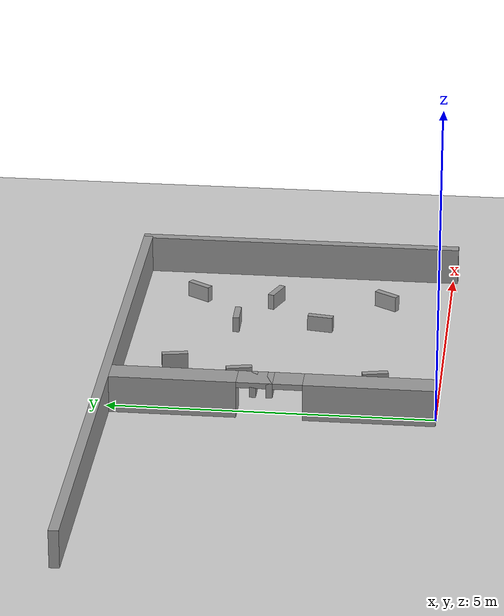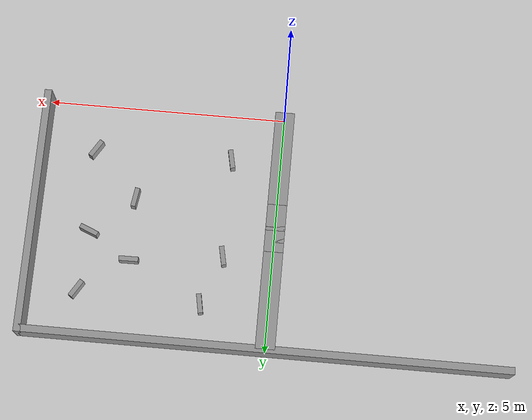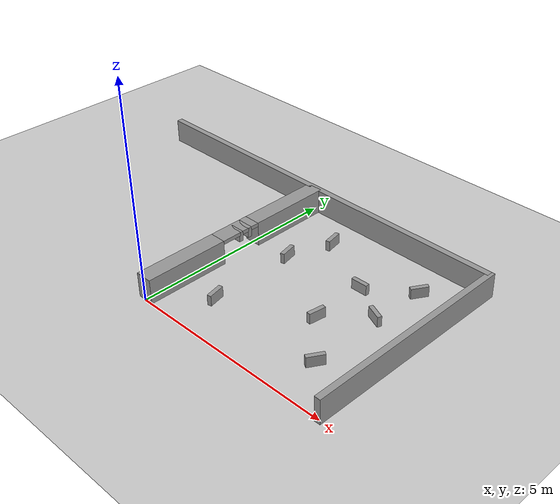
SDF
<sdf version="1.6">
 <world name="default">
  <model name="ground_plane">
   <static>1</static>
   <link name="link">
    <collision name="collision">
     <geometry><plane><normal>0 0 1</normal><size>100 100</size></plane></geometry>
     <surface><friction><ode><mu>100</mu><mu2>50</mu2></ode></friction></surface>
    </collision>
    <visual name="visual">
     <cast_shadows>0</cast_shadows>
     <geometry><plane><normal>0 0 1</normal><size>100 100</size></plane></geometry>
     <material>
      <script><uri>file://media/materials/scripts/gazebo.material</uri><name>Gazebo/Grey</name></script>
     </material>
    </visual>
   </link>
  </model>
  <model name="unit_box">
   <link name="link_0_clone">
    <inertial>
     <mass>1</mass>
     <inertia>
      <ixx>0.166667</ixx>
      <ixy>0</ixy>
      <ixz>0</ixz>
      <iyy>0.166667</iyy>
      <iyz>0</iyz>
      <izz>0.166667</izz>
     </inertia>
    </inertial>
    <pose>5 2.5 0.3 0 -0 0</pose>
    <visual name="visual">
     <geometry><box><size>0.15 5.15 0.59</size></box></geometry>
     <material>
      <lighting>1</lighting>
      <script><uri>file://media/materials/scripts/gazebo.material</uri><name>Gazebo/Grey</name></script>
      <shader type="pixel"><normal_map>__default__</normal_map></shader>
      <ambient>0.3 0.3 0.3 1</ambient>
      <diffuse>0.7 0.7 0.7 1</diffuse>
      <specular>0.01 0.01 0.01 1</specular>
      <emissive>0 0 0 1</emissive>
     </material>
    </visual>
    <collision name="collision">
     <geometry><box><size>0.15 5.15 0.59</size></box></geometry>
     <surface>
      <friction>
       <ode><mu>1</mu><mu2>1</mu2><fdir1>0 0 0</fdir1><slip1>0</slip1><slip2>0</slip2></ode>
       <torsional>
        <coefficient>1</coefficient>
        <patch_radius>0</patch_radius>
        <surface_radius>0</surface_radius>
        <use_patch_radius>1</use_patch_radius>
        <ode><slip>0</slip></ode>
       </torsional>
      </friction>
      <bounce><restitution_coefficient>0</restitution_coefficient><threshold>1e+06</threshold></bounce>
      <contact>
       <collide_without_contact>0</collide_without_contact>
       <collide_without_contact_bitmask>1</collide_without_contact_bitmask>
       <collide_bitmask>1</collide_bitmask>
       <ode>
        <soft_cfm>0</soft_cfm>
        <soft_erp>0.2</soft_erp>
        <kp>1e+13</kp>
        <kd>1</kd>
        <max_vel>0.01</max_vel>
        <min_depth>0</min_depth>
       </ode>
       <bullet>
        <split_impulse>1</split_impulse>
        <split_impulse_penetration_threshold>-0.01</split_impulse_penetration_threshold>
        <soft_cfm>0</soft_cfm>
        <soft_erp>0.2</soft_erp>
        <kp>1e+13</kp>
        <kd>1</kd>
       </bullet>
      </contact>
     </surface>
    </collision>
   </link>
   <link name="link_1_clone_0_clone">
    <inertial>
     <mass>1</mass>
     <inertia>
      <ixx>0.166667</ixx>
      <ixy>0</ixy>
      <ixz>0</ixz>
      <iyy>0.166667</iyy>
      <iyz>0</iyz>
      <izz>0.166667</izz>
     </inertia>
    </inertial>
    <pose>0 2.5 0.475 0 -0 0</pose>
    <visual name="visual">
     <geometry><box><size>0.4 0.1 0.24</size></box></geometry>
     <material>
      <lighting>1</lighting>
      <script><uri>file://media/materials/scripts/gazebo.material</uri><name>Gazebo/Grey</name></script>
      <shader type="pixel"><normal_map>__default__</normal_map></shader>
      <ambient>0.3 0.3 0.3 1</ambient>
      <diffuse>0.7 0.7 0.7 1</diffuse>
      <specular>0.01 0.01 0.01 1</specular>
      <emissive>0 0 0 1</emissive>
     </material>
    </visual>
    <collision name="collision">
     <geometry><box><size>0.4 0.1 0.24</size></box></geometry>
     <surface>
      <friction>
       <ode><mu>1</mu><mu2>1</mu2><fdir1>0 0 0</fdir1><slip1>0</slip1><slip2>0</slip2></ode>
       <torsional>
        <coefficient>1</coefficient>
        <patch_radius>0</patch_radius>
        <surface_radius>0</surface_radius>
        <use_patch_radius>1</use_patch_radius>
        <ode><slip>0</slip></ode>
       </torsional>
      </friction>
      <bounce><restitution_coefficient>0</restitution_coefficient><threshold>1e+06</threshold></bounce>
      <contact>
       <collide_without_contact>0</collide_without_contact>
       <collide_without_contact_bitmask>1</collide_without_contact_bitmask>
       <collide_bitmask>1</collide_bitmask>
       <ode>
        <soft_cfm>0</soft_cfm>
        <soft_erp>0.2</soft_erp>
        <kp>1e+13</kp>
        <kd>1</kd>
        <max_vel>0.01</max_vel>
        <min_depth>0</min_depth>
       </ode>
       <bullet>
        <split_impulse>1</split_impulse>
        <split_impulse_penetration_threshold>-0.01</split_impulse_penetration_threshold>
        <soft_cfm>0</soft_cfm>
        <soft_erp>0.2</soft_erp>
        <kp>1e+13</kp>
        <kd>1</kd>
       </bullet>
      </contact>
     </surface>
    </collision>
   </link>
   <link name="link_1_clone_0_clone_clone_0">
    <inertial>
     <mass>1</mass>
     <inertia>
      <ixx>0.166667</ixx>
      <ixy>0</ixy>
      <ixz>0</ixz>
      <iyy>0.166667</iyy>
      <iyz>0</iyz>
      <izz>0.166667</izz>
     </inertia>
    </inertial>
    <pose>0 2.75 0.475 0 -0 0</pose>
    <visual name="visual">
     <geometry><box><size>0.4 0.1 0.24</size></box></geometry>
     <material>
      <lighting>1</lighting>
      <script><uri>file://media/materials/scripts/gazebo.material</uri><name>Gazebo/Grey</name></script>
      <shader type="pixel"><normal_map>__default__</normal_map></shader>
      <ambient>0.3 0.3 0.3 1</ambient>
      <diffuse>0.7 0.7 0.7 1</diffuse>
      <specular>0.01 0.01 0.01 1</specular>
      <emissive>0 0 0 1</emissive>
     </material>
    </visual>
    <collision name="collision">
     <geometry><box><size>0.4 0.1 0.24</size></box></geometry>
     <surface>
      <friction>
       <ode><mu>1</mu><mu2>1</mu2><fdir1>0 0 0</fdir1><slip1>0</slip1><slip2>0</slip2></ode>
       <torsional>
        <coefficient>1</coefficient>
        <patch_radius>0</patch_radius>
        <surface_radius>0</surface_radius>
        <use_patch_radius>1</use_patch_radius>
        <ode><slip>0</slip></ode>
       </torsional>
      </friction>
      <bounce><restitution_coefficient>0</restitution_coefficient><threshold>1e+06</threshold></bounce>
      <contact>
       <collide_without_contact>0</collide_without_contact>
       <collide_without_contact_bitmask>1</collide_without_contact_bitmask>
       <collide_bitmask>1</collide_bitmask>
       <ode>
        <soft_cfm>0</soft_cfm>
        <soft_erp>0.2</soft_erp>
        <kp>1e+13</kp>
        <kd>1</kd>
        <max_vel>0.01</max_vel>
        <min_depth>0</min_depth>
       </ode>
       <bullet>
        <split_impulse>1</split_impulse>
        <split_impulse_penetration_threshold>-0.01</split_impulse_penetration_threshold>
        <soft_cfm>0</soft_cfm>
        <soft_erp>0.2</soft_erp>
        <kp>1e+13</kp>
        <kd>1</kd>
       </bullet>
      </contact>
     </surface>
    </collision>
   </link>
   <link name="link_1_clone_0_clone_clone_1_clone_0_clone">
    <inertial>
     <mass>1</mass>
     <inertia>
      <ixx>0.166667</ixx>
      <ixy>0</ixy>
      <ixz>0</ixz>
      <iyy>0.166667</iyy>
      <iyz>0</iyz>
      <izz>0.166667</izz>
     </inertia>
    </inertial>
    <pose>2.96697 1.99891 0.125 0 -0 1.42</pose>
    <visual name="visual">
     <geometry><box><size>0.4 0.1 0.25</size></box></geometry>
     <material>
      <lighting>1</lighting>
      <script><uri>file://media/materials/scripts/gazebo.material</uri><name>Gazebo/Grey</name></script>
      <shader type="pixel"><normal_map>__default__</normal_map></shader>
      <ambient>0.3 0.3 0.3 1</ambient>
      <diffuse>0.7 0.7 0.7 1</diffuse>
      <specular>0.01 0.01 0.01 1</specular>
      <emissive>0 0 0 1</emissive>
     </material>
    </visual>
    <collision name="collision">
     <geometry><box><size>0.4 0.1 0.25</size></box></geometry>
     <surface>
      <friction>
       <ode><mu>1</mu><mu2>1</mu2><fdir1>0 0 0</fdir1><slip1>0</slip1><slip2>0</slip2></ode>
       <torsional>
        <coefficient>1</coefficient>
        <patch_radius>0</patch_radius>
        <surface_radius>0</surface_radius>
        <use_patch_radius>1</use_patch_radius>
        <ode><slip>0</slip></ode>
       </torsional>
      </friction>
      <bounce><restitution_coefficient>0</restitution_coefficient><threshold>1e+06</threshold></bounce>
      <contact>
       <collide_without_contact>0</collide_without_contact>
       <collide_without_contact_bitmask>1</collide_without_contact_bitmask>
       <collide_bitmask>1</collide_bitmask>
       <ode>
        <soft_cfm>0</soft_cfm>
        <soft_erp>0.2</soft_erp>
        <kp>1e+13</kp>
        <kd>1</kd>
        <max_vel>0.01</max_vel>
        <min_depth>0</min_depth>
       </ode>
       <bullet>
        <split_impulse>1</split_impulse>
        <split_impulse_penetration_threshold>-0.01</split_impulse_penetration_threshold>
        <soft_cfm>0</soft_cfm>
        <soft_erp>0.2</soft_erp>
        <kp>1e+13</kp>
        <kd>1</kd>
       </bullet>
      </contact>
     </surface>
    </collision>
   </link>
   <link name="link_1_clone_0_clone_clone_1_clone_1_clone">
    <inertial>
     <mass>1</mass>
     <inertia>
      <ixx>0.166667</ixx>
      <ixy>0</ixy>
      <ixz>0</ixz>
      <iyy>0.166667</iyy>
      <iyz>0</iyz>
      <izz>0.166667</izz>
     </inertia>
    </inertial>
    <pose>3.84818 2.77976 0.125 0 0 -0.389342</pose>
    <visual name="visual">
     <geometry><box><size>0.4 0.1 0.25</size></box></geometry>
     <material>
      <lighting>1</lighting>
      <script><uri>file://media/materials/scripts/gazebo.material</uri><name>Gazebo/Grey</name></script>
      <shader type="pixel"><normal_map>__default__</normal_map></shader>
      <ambient>0.3 0.3 0.3 1</ambient>
      <diffuse>0.7 0.7 0.7 1</diffuse>
      <specular>0.01 0.01 0.01 1</specular>
      <emissive>0 0 0 1</emissive>
     </material>
    </visual>
    <collision name="collision">
     <geometry><box><size>0.4 0.1 0.25</size></box></geometry>
     <surface>
      <friction>
       <ode><mu>1</mu><mu2>1</mu2><fdir1>0 0 0</fdir1><slip1>0</slip1><slip2>0</slip2></ode>
       <torsional>
        <coefficient>1</coefficient>
        <patch_radius>0</patch_radius>
        <surface_radius>0</surface_radius>
        <use_patch_radius>1</use_patch_radius>
        <ode><slip>0</slip></ode>
       </torsional>
      </friction>
      <bounce><restitution_coefficient>0</restitution_coefficient><threshold>1e+06</threshold></bounce>
      <contact>
       <collide_without_contact>0</collide_without_contact>
       <collide_without_contact_bitmask>1</collide_without_contact_bitmask>
       <collide_bitmask>1</collide_bitmask>
       <ode>
        <soft_cfm>0</soft_cfm>
        <soft_erp>0.2</soft_erp>
        <kp>1e+13</kp>
        <kd>1</kd>
        <max_vel>0.01</max_vel>
        <min_depth>0</min_depth>
       </ode>
       <bullet>
        <split_impulse>1</split_impulse>
        <split_impulse_penetration_threshold>-0.01</split_impulse_penetration_threshold>
        <soft_cfm>0</soft_cfm>
        <soft_erp>0.2</soft_erp>
        <kp>1e+13</kp>
        <kd>1</kd>
       </bullet>
      </contact>
     </surface>
    </collision>
   </link>
   <link name="link_1_clone_0_clone_clone_1_clone_4_clone">
    <inertial>
     <mass>1</mass>
     <inertia>
      <ixx>0.166667</ixx>
      <ixy>0</ixy>
      <ixz>0</ixz>
      <iyy>0.166667</iyy>
      <iyz>0</iyz>
      <izz>0.166667</izz>
     </inertia>
    </inertial>
    <pose>1.41276 4.12196 0.125 0 -0 1.75222</pose>
    <visual name="visual">
     <geometry><box><size>0.4 0.1 0.25</size></box></geometry>
     <material>
      <lighting>1</lighting>
      <script><uri>file://media/materials/scripts/gazebo.material</uri><name>Gazebo/Grey</name></script>
      <shader type="pixel"><normal_map>__default__</normal_map></shader>
      <ambient>0.3 0.3 0.3 1</ambient>
      <diffuse>0.7 0.7 0.7 1</diffuse>
      <specular>0.01 0.01 0.01 1</specular>
      <emissive>0 0 0 1</emissive>
     </material>
    </visual>
    <collision name="collision">
     <geometry><box><size>0.4 0.1 0.25</size></box></geometry>
     <surface>
      <friction>
       <ode><mu>1</mu><mu2>1</mu2><fdir1>0 0 0</fdir1><slip1>0</slip1><slip2>0</slip2></ode>
       <torsional>
        <coefficient>1</coefficient>
        <patch_radius>0</patch_radius>
        <surface_radius>0</surface_radius>
        <use_patch_radius>1</use_patch_radius>
        <ode><slip>0</slip></ode>
       </torsional>
      </friction>
      <bounce><restitution_coefficient>0</restitution_coefficient><threshold>1e+06</threshold></bounce>
      <contact>
       <collide_without_contact>0</collide_without_contact>
       <collide_without_contact_bitmask>1</collide_without_contact_bitmask>
       <collide_bitmask>1</collide_bitmask>
       <ode>
        <soft_cfm>0</soft_cfm>
        <soft_erp>0.2</soft_erp>
        <kp>1e+13</kp>
        <kd>1</kd>
        <max_vel>0.01</max_vel>
        <min_depth>0</min_depth>
       </ode>
       <bullet>
        <split_impulse>1</split_impulse>
        <split_impulse_penetration_threshold>-0.01</split_impulse_penetration_threshold>
        <soft_cfm>0</soft_cfm>
        <soft_erp>0.2</soft_erp>
        <kp>1e+13</kp>
        <kd>1</kd>
       </bullet>
      </contact>
     </surface>
    </collision>
   </link>
   <link name="link_1_clone_0_clone_clone_1_clone_5_clone_clone">
    <inertial>
     <mass>1</mass>
     <inertia>
      <ixx>0.166667</ixx>
      <ixy>0</ixy>
      <ixz>0</ixz>
      <iyy>0.166667</iyy>
      <iyz>0</iyz>
      <izz>0.166667</izz>
     </inertia>
    </inertial>
    <pose>3.90258 1.00954 0.125 0 -0 1.0177</pose>
    <visual name="visual">
     <geometry><box><size>0.4 0.1 0.25</size></box></geometry>
     <material>
      <lighting>1</lighting>
      <script><uri>file://media/materials/scripts/gazebo.material</uri><name>Gazebo/Grey</name></script>
      <shader type="pixel"><normal_map>__default__</normal_map></shader>
      <ambient>0.3 0.3 0.3 1</ambient>
      <diffuse>0.7 0.7 0.7 1</diffuse>
      <specular>0.01 0.01 0.01 1</specular>
      <emissive>0 0 0 1</emissive>
     </material>
    </visual>
    <collision name="collision">
     <geometry><box><size>0.4 0.1 0.25</size></box></geometry>
     <surface>
      <friction>
       <ode><mu>1</mu><mu2>1</mu2><fdir1>0 0 0</fdir1><slip1>0</slip1><slip2>0</slip2></ode>
       <torsional>
        <coefficient>1</coefficient>
        <patch_radius>0</patch_radius>
        <surface_radius>0</surface_radius>
        <use_patch_radius>1</use_patch_radius>
        <ode><slip>0</slip></ode>
       </torsional>
      </friction>
      <bounce><restitution_coefficient>0</restitution_coefficient><threshold>1e+06</threshold></bounce>
      <contact>
       <collide_without_contact>0</collide_without_contact>
       <collide_without_contact_bitmask>1</collide_without_contact_bitmask>
       <collide_bitmask>1</collide_bitmask>
       <ode>
        <soft_cfm>0</soft_cfm>
        <soft_erp>0.2</soft_erp>
        <kp>1e+13</kp>
        <kd>1</kd>
        <max_vel>0.01</max_vel>
        <min_depth>0</min_depth>
       </ode>
       <bullet>
        <split_impulse>1</split_impulse>
        <split_impulse_penetration_threshold>-0.01</split_impulse_penetration_threshold>
        <soft_cfm>0</soft_cfm>
        <soft_erp>0.2</soft_erp>
        <kp>1e+13</kp>
        <kd>1</kd>
       </bullet>
      </contact>
     </surface>
    </collision>
   </link>
   <link name="link_1_clone_0_clone_clone_1_clone_6_clone">
    <inertial>
     <mass>1</mass>
     <inertia>
      <ixx>0.166667</ixx>
      <ixy>0</ixy>
      <ixz>0</ixz>
      <iyy>0.166667</iyy>
      <iyz>0</iyz>
      <izz>0.166667</izz>
     </inertia>
    </inertial>
    <pose>2.96344 3.32146 0.125 0 -0 0.01</pose>
    <visual name="visual">
     <geometry><box><size>0.4 0.1 0.25</size></box></geometry>
     <material>
      <lighting>1</lighting>
      <script><uri>file://media/materials/scripts/gazebo.material</uri><name>Gazebo/Grey</name></script>
      <shader type="pixel"><normal_map>__default__</normal_map></shader>
      <ambient>0.3 0.3 0.3 1</ambient>
      <diffuse>0.7 0.7 0.7 1</diffuse>
      <specular>0.01 0.01 0.01 1</specular>
      <emissive>0 0 0 1</emissive>
     </material>
    </visual>
    <collision name="collision">
     <geometry><box><size>0.4 0.1 0.25</size></box></geometry>
     <surface>
      <friction>
       <ode><mu>1</mu><mu2>1</mu2><fdir1>0 0 0</fdir1><slip1>0</slip1><slip2>0</slip2></ode>
       <torsional>
        <coefficient>1</coefficient>
        <patch_radius>0</patch_radius>
        <surface_radius>0</surface_radius>
        <use_patch_radius>1</use_patch_radius>
        <ode><slip>0</slip></ode>
       </torsional>
      </friction>
      <bounce><restitution_coefficient>0</restitution_coefficient><threshold>1e+06</threshold></bounce>
      <contact>
       <collide_without_contact>0</collide_without_contact>
       <collide_without_contact_bitmask>1</collide_without_contact_bitmask>
       <collide_bitmask>1</collide_bitmask>
       <ode>
        <soft_cfm>0</soft_cfm>
        <soft_erp>0.2</soft_erp>
        <kp>1e+13</kp>
        <kd>1</kd>
        <max_vel>0.01</max_vel>
        <min_depth>0</min_depth>
       </ode>
       <bullet>
        <split_impulse>1</split_impulse>
        <split_impulse_penetration_threshold>-0.01</split_impulse_penetration_threshold>
        <soft_cfm>0</soft_cfm>
        <soft_erp>0.2</soft_erp>
        <kp>1e+13</kp>
        <kd>1</kd>
       </bullet>
      </contact>
     </surface>
    </collision>
   </link>
   <link name="link_1_clone_0_clone_clone_1_clone_7">
    <inertial>
     <mass>1</mass>
     <inertia>
      <ixx>0.166667</ixx>
      <ixy>0</ixy>
      <ixz>0</ixz>
      <iyy>0.166667</iyy>
      <iyz>0</iyz>
      <izz>0.166667</izz>
     </inertia>
    </inertial>
    <pose>1.03965 0.995472 0.125 0 0 -1.36276</pose>
    <visual name="visual">
     <geometry><box><size>0.4 0.1 0.25</size></box></geometry>
     <material>
      <lighting>1</lighting>
      <script><uri>file://media/materials/scripts/gazebo.material</uri><name>Gazebo/Grey</name></script>
      <shader type="pixel"><normal_map>__default__</normal_map></shader>
      <ambient>0.3 0.3 0.3 1</ambient>
      <diffuse>0.7 0.7 0.7 1</diffuse>
      <specular>0.01 0.01 0.01 1</specular>
      <emissive>0 0 0 1</emissive>
     </material>
    </visual>
    <collision name="collision">
     <geometry><box><size>0.4 0.1 0.25</size></box></geometry>
     <surface>
      <friction>
       <ode><mu>1</mu><mu2>1</mu2><fdir1>0 0 0</fdir1><slip1>0</slip1><slip2>0</slip2></ode>
       <torsional>
        <coefficient>1</coefficient>
        <patch_radius>0</patch_radius>
        <surface_radius>0</surface_radius>
        <use_patch_radius>1</use_patch_radius>
        <ode><slip>0</slip></ode>
       </torsional>
      </friction>
      <bounce><restitution_coefficient>0</restitution_coefficient><threshold>1e+06</threshold></bounce>
      <contact>
       <collide_without_contact>0</collide_without_contact>
       <collide_without_contact_bitmask>1</collide_without_contact_bitmask>
       <collide_bitmask>1</collide_bitmask>
       <ode>
        <soft_cfm>0</soft_cfm>
        <soft_erp>0.2</soft_erp>
        <kp>1e+13</kp>
        <kd>1</kd>
        <max_vel>0.01</max_vel>
        <min_depth>0</min_depth>
       </ode>
       <bullet>
        <split_impulse>1</split_impulse>
        <split_impulse_penetration_threshold>-0.01</split_impulse_penetration_threshold>
        <soft_cfm>0</soft_cfm>
        <soft_erp>0.2</soft_erp>
        <kp>1e+13</kp>
        <kd>1</kd>
       </bullet>
      </contact>
     </surface>
    </collision>
   </link>
   <link name="link_1_clone_0_clone_clone_1_clone_8">
    <inertial>
     <mass>1</mass>
     <inertia>
      <ixx>0.166667</ixx>
      <ixy>0</ixy>
      <ixz>0</ixz>
      <iyy>0.166667</iyy>
      <iyz>0</iyz>
      <izz>0.166667</izz>
     </inertia>
    </inertial>
    <pose>1.03485 3.08411 0.125 0 0 -1.36276</pose>
    <visual name="visual">
     <geometry><box><size>0.4 0.1 0.25</size></box></geometry>
     <material>
      <lighting>1</lighting>
      <script><uri>file://media/materials/scripts/gazebo.material</uri><name>Gazebo/Grey</name></script>
      <shader type="pixel"><normal_map>__default__</normal_map></shader>
      <ambient>0.3 0.3 0.3 1</ambient>
      <diffuse>0.7 0.7 0.7 1</diffuse>
      <specular>0.01 0.01 0.01 1</specular>
      <emissive>0 0 0 1</emissive>
     </material>
    </visual>
    <collision name="collision">
     <geometry><box><size>0.4 0.1 0.25</size></box></geometry>
     <surface>
      <friction>
       <ode><mu>1</mu><mu2>1</mu2><fdir1>0 0 0</fdir1><slip1>0</slip1><slip2>0</slip2></ode>
       <torsional>
        <coefficient>1</coefficient>
        <patch_radius>0</patch_radius>
        <surface_radius>0</surface_radius>
        <use_patch_radius>1</use_patch_radius>
        <ode><slip>0</slip></ode>
       </torsional>
      </friction>
      <bounce><restitution_coefficient>0</restitution_coefficient><threshold>1e+06</threshold></bounce>
      <contact>
       <collide_without_contact>0</collide_without_contact>
       <collide_without_contact_bitmask>1</collide_without_contact_bitmask>
       <collide_bitmask>1</collide_bitmask>
       <ode>
        <soft_cfm>0</soft_cfm>
        <soft_erp>0.2</soft_erp>
        <kp>1e+13</kp>
        <kd>1</kd>
        <max_vel>0.01</max_vel>
        <min_depth>0</min_depth>
       </ode>
       <bullet>
        <split_impulse>1</split_impulse>
        <split_impulse_penetration_threshold>-0.01</split_impulse_penetration_threshold>
        <soft_cfm>0</soft_cfm>
        <soft_erp>0.2</soft_erp>
        <kp>1e+13</kp>
        <kd>1</kd>
       </bullet>
      </contact>
     </surface>
    </collision>
   </link>
   <link name="link_1_clone_0_clone_clone_1_clone_clone">
    <inertial>
     <mass>1</mass>
     <inertia>
      <ixx>0.166667</ixx>
      <ixy>0</ixy>
      <ixz>0</ixz>
      <iyy>0.166667</iyy>
      <iyz>0</iyz>
      <izz>0.166667</izz>
     </inertia>
    </inertial>
    <pose>3.96677 4.02792 0.125 0 -0 1.0177</pose>
    <visual name="visual">
     <geometry><box><size>0.4 0.1 0.25</size></box></geometry>
     <material>
      <lighting>1</lighting>
      <script><uri>file://media/materials/scripts/gazebo.material</uri><name>Gazebo/Grey</name></script>
      <shader type="pixel"><normal_map>__default__</normal_map></shader>
      <ambient>0.3 0.3 0.3 1</ambient>
      <diffuse>0.7 0.7 0.7 1</diffuse>
      <specular>0.01 0.01 0.01 1</specular>
      <emissive>0 0 0 1</emissive>
     </material>
    </visual>
    <collision name="collision">
     <geometry><box><size>0.4 0.1 0.25</size></box></geometry>
     <surface>
      <friction>
       <ode><mu>1</mu><mu2>1</mu2><fdir1>0 0 0</fdir1><slip1>0</slip1><slip2>0</slip2></ode>
       <torsional>
        <coefficient>1</coefficient>
        <patch_radius>0</patch_radius>
        <surface_radius>0</surface_radius>
        <use_patch_radius>1</use_patch_radius>
        <ode><slip>0</slip></ode>
       </torsional>
      </friction>
      <bounce><restitution_coefficient>0</restitution_coefficient><threshold>1e+06</threshold></bounce>
      <contact>
       <collide_without_contact>0</collide_without_contact>
       <collide_without_contact_bitmask>1</collide_without_contact_bitmask>
       <collide_bitmask>1</collide_bitmask>
       <ode>
        <soft_cfm>0</soft_cfm>
        <soft_erp>0.2</soft_erp>
        <kp>1e+13</kp>
        <kd>1</kd>
        <max_vel>0.01</max_vel>
        <min_depth>0</min_depth>
       </ode>
       <bullet>
        <split_impulse>1</split_impulse>
        <split_impulse_penetration_threshold>-0.01</split_impulse_penetration_threshold>
        <soft_cfm>0</soft_cfm>
        <soft_erp>0.2</soft_erp>
        <kp>1e+13</kp>
        <kd>1</kd>
       </bullet>
      </contact>
     </surface>
    </collision>
   </link>
   <link name="link_3">
    <inertial>
     <mass>1</mass>
     <inertia>
      <ixx>0.166667</ixx>
      <ixy>0</ixy>
      <ixz>0</ixz>
      <iyy>0.166667</iyy>
      <iyz>0</iyz>
      <izz>0.166667</izz>
     </inertia>
    </inertial>
    <pose>0 1 0.3 0 -0 0</pose>
    <visual name="visual">
     <geometry><box><size>0.4 2 0.59</size></box></geometry>
     <material>
      <lighting>1</lighting>
      <script><uri>file://media/materials/scripts/gazebo.material</uri><name>Gazebo/Grey</name></script>
      <shader type="pixel"><normal_map>__default__</normal_map></shader>
      <ambient>0.3 0.3 0.3 1</ambient>
      <diffuse>0.7 0.7 0.7 1</diffuse>
      <specular>0.01 0.01 0.01 1</specular>
      <emissive>0 0 0 1</emissive>
     </material>
    </visual>
    <collision name="collision">
     <geometry><box><size>0.4 2 0.59</size></box></geometry>
     <surface>
      <friction>
       <ode><mu>1</mu><mu2>1</mu2><fdir1>0 0 0</fdir1><slip1>0</slip1><slip2>0</slip2></ode>
       <torsional>
        <coefficient>1</coefficient>
        <patch_radius>0</patch_radius>
        <surface_radius>0</surface_radius>
        <use_patch_radius>1</use_patch_radius>
        <ode><slip>0</slip></ode>
       </torsional>
      </friction>
      <bounce><restitution_coefficient>0</restitution_coefficient><threshold>1e+06</threshold></bounce>
      <contact>
       <collide_without_contact>0</collide_without_contact>
       <collide_without_contact_bitmask>1</collide_without_contact_bitmask>
       <collide_bitmask>1</collide_bitmask>
       <ode>
        <soft_cfm>0</soft_cfm>
        <soft_erp>0.2</soft_erp>
        <kp>1e+13</kp>
        <kd>1</kd>
        <max_vel>0.01</max_vel>
        <min_depth>0</min_depth>
       </ode>
       <bullet>
        <split_impulse>1</split_impulse>
        <split_impulse_penetration_threshold>-0.01</split_impulse_penetration_threshold>
        <soft_cfm>0</soft_cfm>
        <soft_erp>0.2</soft_erp>
        <kp>1e+13</kp>
        <kd>1</kd>
       </bullet>
      </contact>
     </surface>
    </collision>
   </link>
   <link name="link_3_clone">
    <inertial>
     <mass>1</mass>
     <inertia>
      <ixx>0.166667</ixx>
      <ixy>0</ixy>
      <ixz>0</ixz>
      <iyy>0.166667</iyy>
      <iyz>0</iyz>
      <izz>0.166667</izz>
     </inertia>
    </inertial>
    <pose>0 4 0.3 0 -0 0</pose>
    <visual name="visual">
     <geometry><box><size>0.4 2 0.59</size></box></geometry>
     <material>
      <lighting>1</lighting>
      <script><uri>file://media/materials/scripts/gazebo.material</uri><name>Gazebo/Grey</name></script>
      <shader type="pixel"><normal_map>__default__</normal_map></shader>
      <ambient>0.3 0.3 0.3 1</ambient>
      <diffuse>0.7 0.7 0.7 1</diffuse>
      <specular>0.01 0.01 0.01 1</specular>
      <emissive>0 0 0 1</emissive>
     </material>
    </visual>
    <collision name="collision">
     <geometry><box><size>0.4 2 0.59</size></box></geometry>
     <surface>
      <friction>
       <ode><mu>1</mu><mu2>1</mu2><fdir1>0 0 0</fdir1><slip1>0</slip1><slip2>0</slip2></ode>
       <torsional>
        <coefficient>1</coefficient>
        <patch_radius>0</patch_radius>
        <surface_radius>0</surface_radius>
        <use_patch_radius>1</use_patch_radius>
        <ode><slip>0</slip></ode>
       </torsional>
      </friction>
      <bounce><restitution_coefficient>0</restitution_coefficient><threshold>1e+06</threshold></bounce>
      <contact>
       <collide_without_contact>0</collide_without_contact>
       <collide_without_contact_bitmask>1</collide_without_contact_bitmask>
       <collide_bitmask>1</collide_bitmask>
       <ode>
        <soft_cfm>0</soft_cfm>
        <soft_erp>0.2</soft_erp>
        <kp>1e+13</kp>
        <kd>1</kd>
        <max_vel>0.01</max_vel>
        <min_depth>0</min_depth>
       </ode>
       <bullet>
        <split_impulse>1</split_impulse>
        <split_impulse_penetration_threshold>-0.01</split_impulse_penetration_threshold>
        <soft_cfm>0</soft_cfm>
        <soft_erp>0.2</soft_erp>
        <kp>1e+13</kp>
        <kd>1</kd>
       </bullet>
      </contact>
     </surface>
    </collision>
   </link>
   <link name="link_4">
    <inertial>
     <mass>1</mass>
     <inertia>
      <ixx>0.166667</ixx>
      <ixy>0</ixy>
      <ixz>0</ixz>
      <iyy>0.166667</iyy>
      <iyz>0</iyz>
      <izz>0.166667</izz>
     </inertia>
    </inertial>
    <pose>0 2.5 0.55 0 -0 0</pose>
    <visual name="visual">
     <geometry><box><size>0.4 1 0.09</size></box></geometry>
     <material>
      <lighting>1</lighting>
      <script><uri>file://media/materials/scripts/gazebo.material</uri><name>Gazebo/Grey</name></script>
      <shader type="pixel"><normal_map>__default__</normal_map></shader>
      <ambient>0.3 0.3 0.3 1</ambient>
      <diffuse>0.7 0.7 0.7 1</diffuse>
      <specular>0.01 0.01 0.01 1</specular>
      <emissive>0 0 0 1</emissive>
     </material>
    </visual>
    <collision name="collision">
     <geometry><box><size>0.4 1 0.09</size></box></geometry>
     <surface>
      <friction>
       <ode><mu>1</mu><mu2>1</mu2><fdir1>0 0 0</fdir1><slip1>0</slip1><slip2>0</slip2></ode>
       <torsional>
        <coefficient>1</coefficient>
        <patch_radius>0</patch_radius>
        <surface_radius>0</surface_radius>
        <use_patch_radius>1</use_patch_radius>
        <ode><slip>0</slip></ode>
       </torsional>
      </friction>
      <bounce><restitution_coefficient>0</restitution_coefficient><threshold>1e+06</threshold></bounce>
      <contact>
       <collide_without_contact>0</collide_without_contact>
       <collide_without_contact_bitmask>1</collide_without_contact_bitmask>
       <collide_bitmask>1</collide_bitmask>
       <ode>
        <soft_cfm>0</soft_cfm>
        <soft_erp>0.2</soft_erp>
        <kp>1e+13</kp>
        <kd>1</kd>
        <max_vel>0.01</max_vel>
        <min_depth>0</min_depth>
       </ode>
       <bullet>
        <split_impulse>1</split_impulse>
        <split_impulse_penetration_threshold>-0.01</split_impulse_penetration_threshold>
        <soft_cfm>0</soft_cfm>
        <soft_erp>0.2</soft_erp>
        <kp>1e+13</kp>
        <kd>1</kd>
       </bullet>
      </contact>
     </surface>
    </collision>
   </link>
   <link name="link_clone">
    <inertial>
     <mass>1</mass>
     <inertia>
      <ixx>0.166667</ixx>
      <ixy>0</ixy>
      <ixz>0</ixz>
      <iyy>0.166667</iyy>
      <iyz>0</iyz>
      <izz>0.166667</izz>
     </inertia>
    </inertial>
    <pose>0 5 0.3 0 -0 0</pose>
    <visual name="visual">
     <geometry><box><size>10 0.15 0.59</size></box></geometry>
     <material>
      <script><name>Gazebo/Grey</name><uri>file://media/materials/scripts/gazebo.material</uri></script>
      <shader type="pixel"><normal_map>__default__</normal_map></shader>
      <ambient>0.3 0.3 0.3 1</ambient>
      <diffuse>0.7 0.7 0.7 1</diffuse>
      <specular>0.01 0.01 0.01 1</specular>
      <emissive>0 0 0 1</emissive>
     </material>
    </visual>
    <collision name="collision">
     <geometry><box><size>10 0.15 0.59</size></box></geometry>
     <surface>
      <friction>
       <ode><mu>1</mu><mu2>1</mu2><fdir1>0 0 0</fdir1><slip1>0</slip1><slip2>0</slip2></ode>
       <torsional>
        <coefficient>1</coefficient>
        <patch_radius>0</patch_radius>
        <surface_radius>0</surface_radius>
        <use_patch_radius>1</use_patch_radius>
        <ode><slip>0</slip></ode>
       </torsional>
      </friction>
      <bounce><restitution_coefficient>0</restitution_coefficient><threshold>1e+06</threshold></bounce>
      <contact>
       <collide_without_contact>0</collide_without_contact>
       <collide_without_contact_bitmask>1</collide_without_contact_bitmask>
       <collide_bitmask>1</collide_bitmask>
       <ode>
        <soft_cfm>0</soft_cfm>
        <soft_erp>0.2</soft_erp>
        <kp>1e+13</kp>
        <kd>1</kd>
        <max_vel>0.01</max_vel>
        <min_depth>0</min_depth>
       </ode>
       <bullet>
        <split_impulse>1</split_impulse>
        <split_impulse_penetration_threshold>-0.01</split_impulse_penetration_threshold>
        <soft_cfm>0</soft_cfm>
        <soft_erp>0.2</soft_erp>
        <kp>1e+13</kp>
        <kd>1</kd>
       </bullet>
      </contact>
     </surface>
    </collision>
   </link>
   <static>1</static>
  </model>
 </world>
</sdf>
